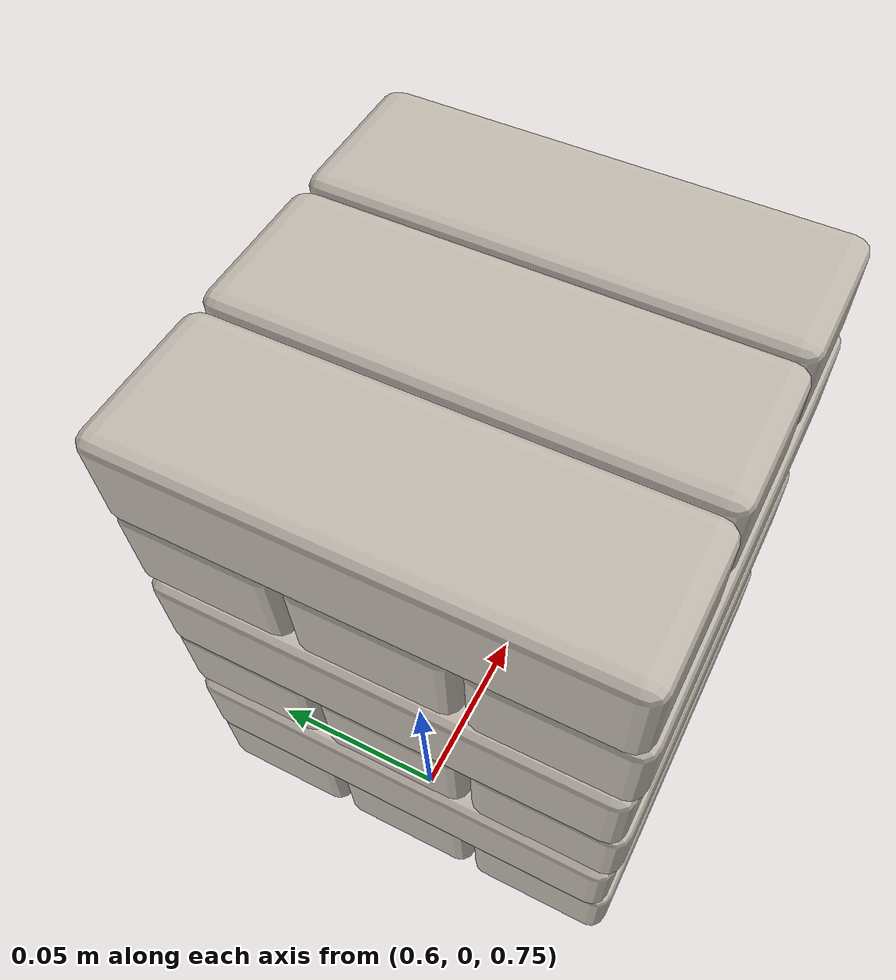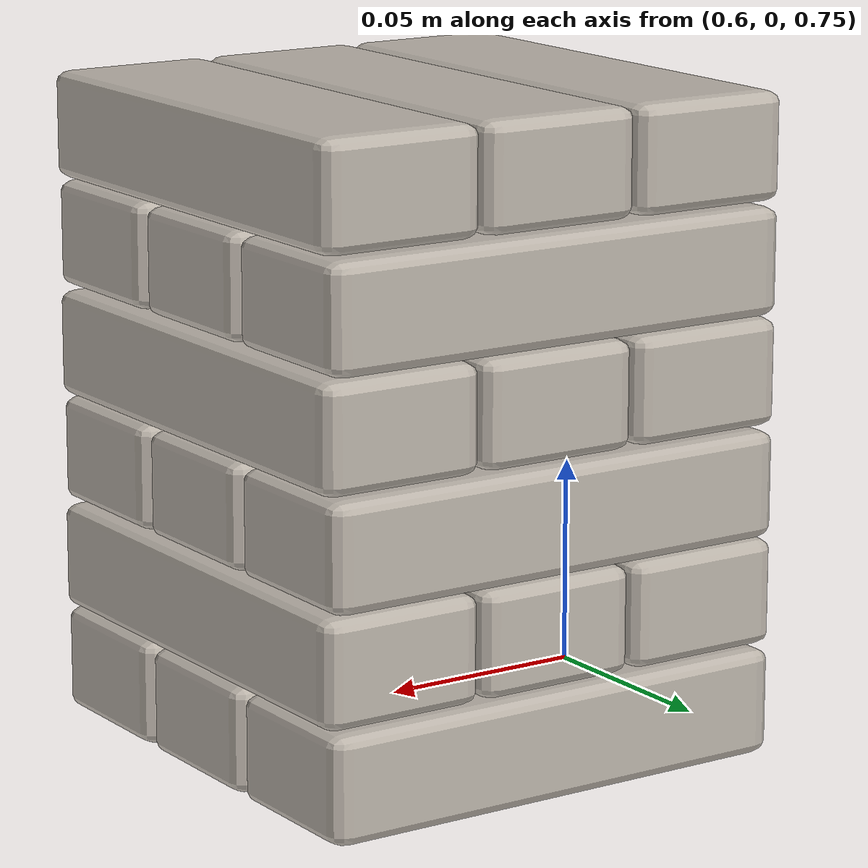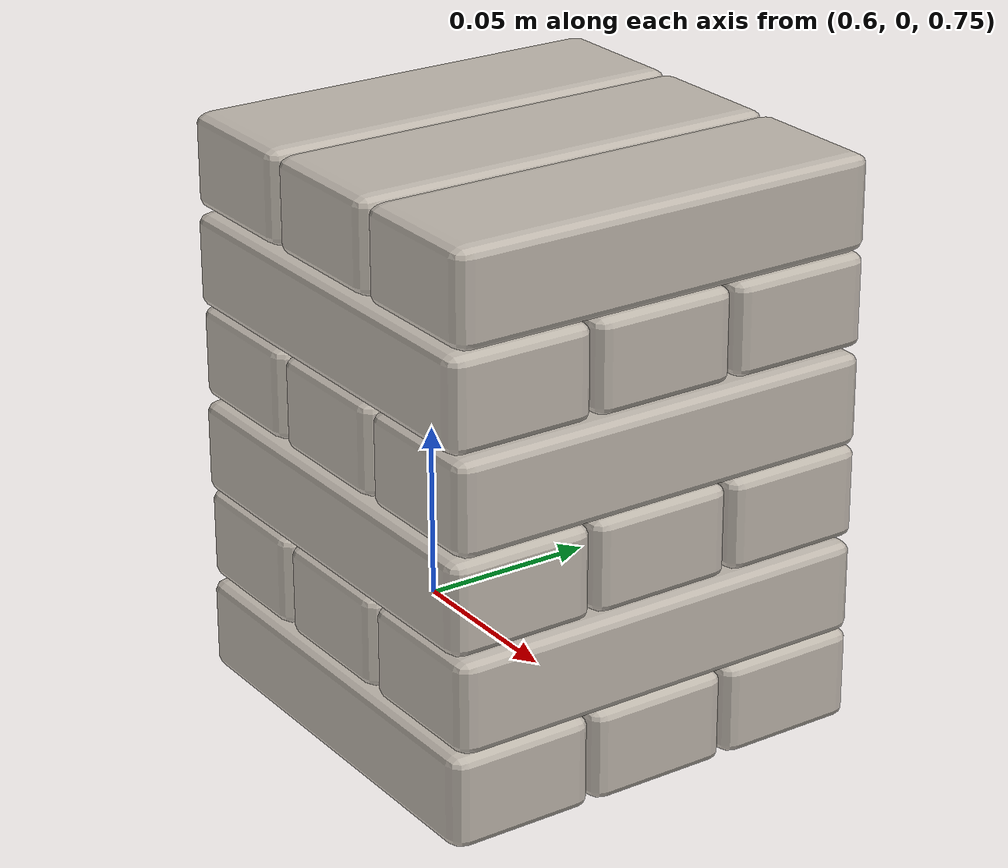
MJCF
<?xml version='1.0' encoding='utf-8'?>
<mujoco model="jenga_task">
  <compiler angle="radian" meshdir="../assets" texturedir="../assets" />
  <default>
    <default class="jenga_block">
      <geom type="mesh" contype="0" conaffinity="0" condim="4" density="0" group="1" priority="1" />
    </default>
    <default class="jenga_col">
      <geom type="box" condim="4" friction="0.5 0.002 0.0002" solref="0.004 1" solimp="0.998 0.998 0.001" priority="1" group="3" rgba="0 0 0 0" />
    </default>
  </default>
  <asset>
    <texture name="jenga_tex" type="2d" file="jenga/blinn1.png" />
    <material name="jenga_mat" texture="jenga_tex" specular="0.3" shininess="0.3" />
    <mesh name="jenga_block" file="jenga/jenga_block.obj" scale="0.0254 0.04064 0.039045" />
    <mesh name="jenga_block_col" file="jenga/jenga_block_collision.obj" scale="0.0254 0.04064 0.039045" />
  </asset>
  <worldbody>
    <body name="jenga_1" pos="0.6450 -0.04124 0.7530" quat="0.707107 0 0.707107 0">
      <freejoint name="jenga_1_jnt" />
      <geom name="jenga_1_vis" mesh="jenga_block" material="jenga_mat" class="jenga_block" />
      <geom name="jenga_1_col" size="0.0127 0.02032 0.060325" mass="0.060" class="jenga_col" group="3" condim="4" friction="0.5 0.002 0.0002" solref="0.004 1" solimp="0.998 0.998 0.001" priority="1" />
    </body>
    <body name="jenga_2" pos="0.6450 0.00000 0.7530" quat="0.707107 0 0.707107 0">
      <freejoint name="jenga_2_jnt" />
      <geom name="jenga_2_vis" mesh="jenga_block" material="jenga_mat" class="jenga_block" />
      <geom name="jenga_2_col" size="0.0127 0.02032 0.060325" mass="0.060" class="jenga_col" group="3" condim="4" friction="0.5 0.002 0.0002" solref="0.004 1" solimp="0.998 0.998 0.001" priority="1" />
    </body>
    <body name="jenga_3" pos="0.6450 0.04124 0.7530" quat="0.707107 0 0.707107 0">
      <freejoint name="jenga_3_jnt" />
      <geom name="jenga_3_vis" mesh="jenga_block" material="jenga_mat" class="jenga_block" />
      <geom name="jenga_3_col" size="0.0127 0.02032 0.060325" mass="0.060" class="jenga_col" group="3" condim="4" friction="0.5 0.002 0.0002" solref="0.004 1" solimp="0.998 0.998 0.001" priority="1" />
    </body>
    <body name="jenga_4" pos="0.6038 0.0000 0.7792" quat="0.5 -0.5 0.5 0.5">
      <freejoint name="jenga_4_jnt" />
      <geom name="jenga_4_vis" mesh="jenga_block" material="jenga_mat" class="jenga_block" />
      <geom name="jenga_4_col" size="0.0127 0.02032 0.060325" mass="0.060" class="jenga_col" group="3" condim="4" friction="0.5 0.002 0.0002" solref="0.004 1" solimp="0.998 0.998 0.001" priority="1" />
    </body>
    <body name="jenga_5" pos="0.6450 0.0000 0.7792" quat="0.5 -0.5 0.5 0.5">
      <freejoint name="jenga_5_jnt" />
      <geom name="jenga_5_vis" mesh="jenga_block" material="jenga_mat" class="jenga_block" />
      <geom name="jenga_5_col" size="0.0127 0.02032 0.060325" mass="0.060" class="jenga_col" group="3" condim="4" friction="0.5 0.002 0.0002" solref="0.004 1" solimp="0.998 0.998 0.001" priority="1" />
    </body>
    <body name="jenga_6" pos="0.6862 0.0000 0.7792" quat="0.5 -0.5 0.5 0.5">
      <freejoint name="jenga_6_jnt" />
      <geom name="jenga_6_vis" mesh="jenga_block" material="jenga_mat" class="jenga_block" />
      <geom name="jenga_6_col" size="0.0127 0.02032 0.060325" mass="0.060" class="jenga_col" group="3" condim="4" friction="0.5 0.002 0.0002" solref="0.004 1" solimp="0.998 0.998 0.001" priority="1" />
    </body>
    <body name="jenga_7" pos="0.6450 -0.04124 0.8054" quat="0.707107 0 0.707107 0">
      <freejoint name="jenga_7_jnt" />
      <geom name="jenga_7_vis" mesh="jenga_block" material="jenga_mat" class="jenga_block" />
      <geom name="jenga_7_col" size="0.0127 0.02032 0.060325" mass="0.060" class="jenga_col" group="3" condim="4" friction="0.5 0.002 0.0002" solref="0.004 1" solimp="0.998 0.998 0.001" priority="1" />
    </body>
    <body name="jenga_8" pos="0.6450 0.00000 0.8054" quat="0.707107 0 0.707107 0">
      <freejoint name="jenga_8_jnt" />
      <geom name="jenga_8_vis" mesh="jenga_block" material="jenga_mat" class="jenga_block" />
      <geom name="jenga_8_col" size="0.0127 0.02032 0.060325" mass="0.060" class="jenga_col" group="3" condim="4" friction="0.5 0.002 0.0002" solref="0.004 1" solimp="0.998 0.998 0.001" priority="1" />
    </body>
    <body name="jenga_9" pos="0.6450 0.04124 0.8054" quat="0.707107 0 0.707107 0">
      <freejoint name="jenga_9_jnt" />
      <geom name="jenga_9_vis" mesh="jenga_block" material="jenga_mat" class="jenga_block" />
      <geom name="jenga_9_col" size="0.0127 0.02032 0.060325" mass="0.060" class="jenga_col" group="3" condim="4" friction="0.5 0.002 0.0002" solref="0.004 1" solimp="0.998 0.998 0.001" priority="1" />
    </body>
    <body name="jenga_10" pos="0.6038 0.0000 0.8316" quat="0.5 -0.5 0.5 0.5">
      <freejoint name="jenga_10_jnt" />
      <geom name="jenga_10_vis" mesh="jenga_block" material="jenga_mat" class="jenga_block" />
      <geom name="jenga_10_col" size="0.0127 0.02032 0.060325" mass="0.060" class="jenga_col" group="3" condim="4" friction="0.5 0.002 0.0002" solref="0.004 1" solimp="0.998 0.998 0.001" priority="1" />
    </body>
    <body name="jenga_11" pos="0.6450 0.0000 0.8316" quat="0.5 -0.5 0.5 0.5">
      <freejoint name="jenga_11_jnt" />
      <geom name="jenga_11_vis" mesh="jenga_block" material="jenga_mat" class="jenga_block" />
      <geom name="jenga_11_col" size="0.0127 0.02032 0.060325" mass="0.060" class="jenga_col" group="3" condim="4" friction="0.5 0.002 0.0002" solref="0.004 1" solimp="0.998 0.998 0.001" priority="1" />
    </body>
    <body name="jenga_12" pos="0.6862 0.0000 0.8316" quat="0.5 -0.5 0.5 0.5">
      <freejoint name="jenga_12_jnt" />
      <geom name="jenga_12_vis" mesh="jenga_block" material="jenga_mat" class="jenga_block" />
      <geom name="jenga_12_col" size="0.0127 0.02032 0.060325" mass="0.060" class="jenga_col" group="3" condim="4" friction="0.5 0.002 0.0002" solref="0.004 1" solimp="0.998 0.998 0.001" priority="1" />
    </body>
    <body name="jenga_13" pos="0.6450 -0.04124 0.8578" quat="0.707107 0 0.707107 0">
      <freejoint name="jenga_13_jnt" />
      <geom name="jenga_13_vis" mesh="jenga_block" material="jenga_mat" class="jenga_block" />
      <geom name="jenga_13_col" size="0.0127 0.02032 0.060325" mass="0.060" class="jenga_col" group="3" condim="4" friction="0.5 0.002 0.0002" solref="0.004 1" solimp="0.998 0.998 0.001" priority="1" />
    </body>
    <body name="jenga_14" pos="0.6450 0.00000 0.8578" quat="0.707107 0 0.707107 0">
      <freejoint name="jenga_14_jnt" />
      <geom name="jenga_14_vis" mesh="jenga_block" material="jenga_mat" class="jenga_block" />
      <geom name="jenga_14_col" size="0.0127 0.02032 0.060325" mass="0.060" class="jenga_col" group="3" condim="4" friction="0.5 0.002 0.0002" solref="0.004 1" solimp="0.998 0.998 0.001" priority="1" />
    </body>
    <body name="jenga_15" pos="0.6450 0.04124 0.8578" quat="0.707107 0 0.707107 0">
      <freejoint name="jenga_15_jnt" />
      <geom name="jenga_15_vis" mesh="jenga_block" material="jenga_mat" class="jenga_block" />
      <geom name="jenga_15_col" size="0.0127 0.02032 0.060325" mass="0.060" class="jenga_col" group="3" condim="4" friction="0.5 0.002 0.0002" solref="0.004 1" solimp="0.998 0.998 0.001" priority="1" />
    </body>
    <body name="jenga_16" pos="0.6038 0.0000 0.8840" quat="0.5 -0.5 0.5 0.5">
      <freejoint name="jenga_16_jnt" />
      <geom name="jenga_16_vis" mesh="jenga_block" material="jenga_mat" class="jenga_block" />
      <geom name="jenga_16_col" size="0.0127 0.02032 0.060325" mass="0.060" class="jenga_col" group="3" condim="4" friction="0.5 0.002 0.0002" solref="0.004 1" solimp="0.998 0.998 0.001" priority="1" />
    </body>
    <body name="jenga_17" pos="0.6450 0.0000 0.8840" quat="0.5 -0.5 0.5 0.5">
      <freejoint name="jenga_17_jnt" />
      <geom name="jenga_17_vis" mesh="jenga_block" material="jenga_mat" class="jenga_block" />
      <geom name="jenga_17_col" size="0.0127 0.02032 0.060325" mass="0.060" class="jenga_col" group="3" condim="4" friction="0.5 0.002 0.0002" solref="0.004 1" solimp="0.998 0.998 0.001" priority="1" />
    </body>
    <body name="jenga_18" pos="0.6862 0.0000 0.8840" quat="0.5 -0.5 0.5 0.5">
      <freejoint name="jenga_18_jnt" />
      <geom name="jenga_18_vis" mesh="jenga_block" material="jenga_mat" class="jenga_block" />
      <geom name="jenga_18_col" size="0.0127 0.02032 0.060325" mass="0.060" class="jenga_col" group="3" condim="4" friction="0.5 0.002 0.0002" solref="0.004 1" solimp="0.998 0.998 0.001" priority="1" />
    </body>
  </worldbody>
</mujoco>
